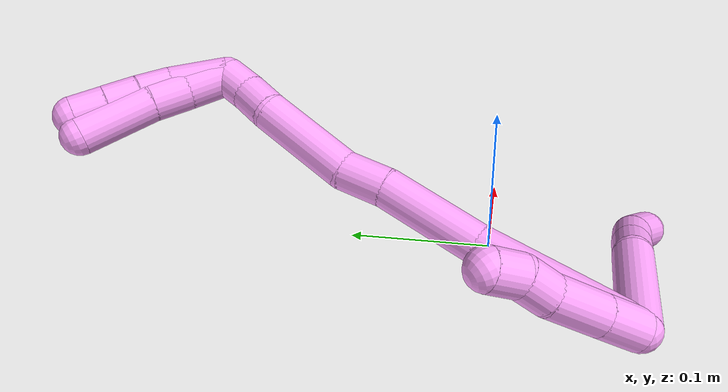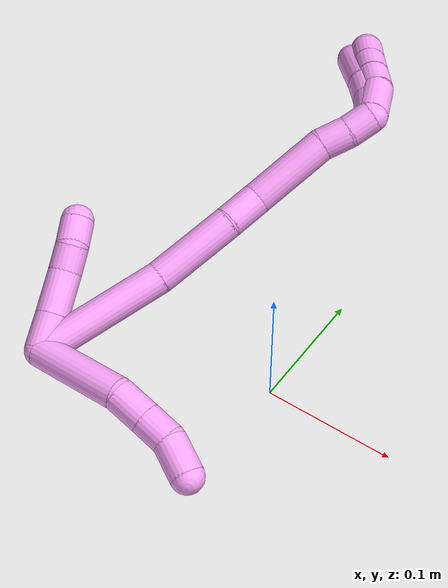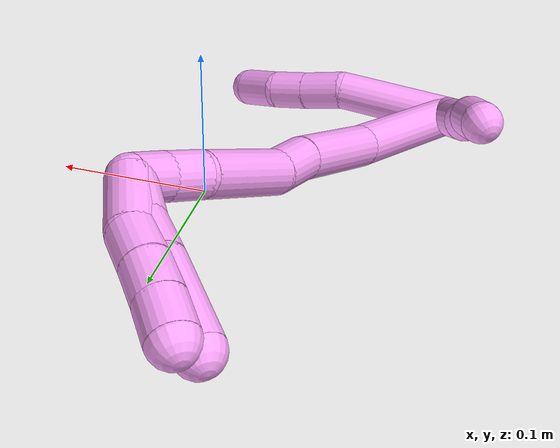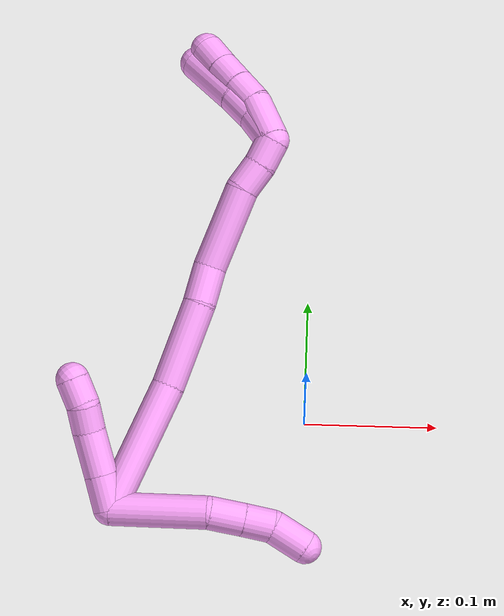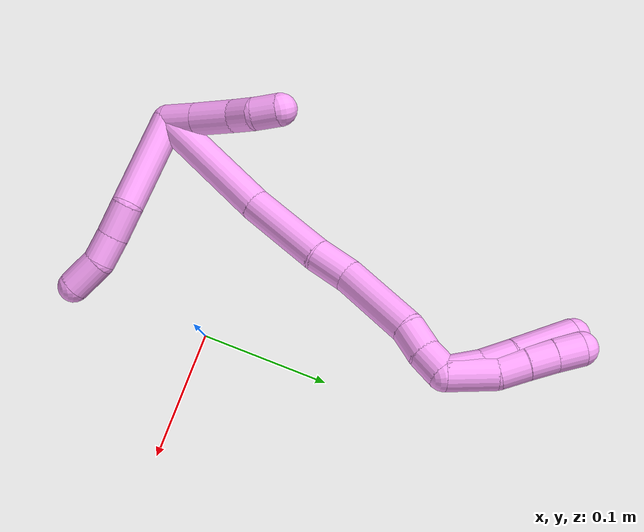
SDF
<sdf version="1.7">
 <world name="default">
  <model name="4">
   <static>0</static>
   <link name="4">
    <collision name="collision-cylinder-e_1_2_8">
     <pose>0.027608 -0.004525 0.023167 0.192904 0.863407 0.089086</pose>
     <geometry><cylinder><radius>0.0125</radius><length>0.072647</length></cylinder></geometry>
     <surface>
      <friction><ode><mu>1.16</mu><mu2>1.16</mu2><slip1>0</slip1><slip2>0</slip2></ode></friction>
      <contact><ode><kp>1e+06</kp><kd>1</kd><max_vel>0</max_vel><min_depth>0.001</min_depth></ode></contact>
     </surface>
    </collision>
    <visual name="visual-cylinder-e_1_2_8">
     <pose>0.027608 -0.004525 0.023167 0.192904 0.863407 0.089086</pose>
     <geometry><cylinder><radius>0.0125</radius><length>0.072647</length></cylinder></geometry>
     <material><ambient>1 0.65098 0.996078 1</ambient></material>
    </visual>
    <collision name="collision-cylinder-e_2_8_9">
     <pose>0.064406 -0.014705 0.053964 0.637734 0.768968 0.265585</pose>
     <geometry><cylinder><radius>0.0125</radius><length>0.02643</length></cylinder></geometry>
     <surface>
      <friction><ode><mu>1.16</mu><mu2>1.16</mu2><slip1>0</slip1><slip2>0</slip2></ode></friction>
      <contact><ode><kp>1e+06</kp><kd>1</kd><max_vel>0</max_vel><min_depth>0.001</min_depth></ode></contact>
     </surface>
    </collision>
    <visual name="visual-cylinder-e_2_8_9">
     <pose>0.064406 -0.014705 0.053964 0.637734 0.768968 0.265585</pose>
     <geometry><cylinder><radius>0.0125</radius><length>0.02643</length></cylinder></geometry>
     <material><ambient>1 0.65098 0.996078 1</ambient></material>
    </visual>
    <collision name="collision-cylinder-e_3_9_10">
     <pose>0.081262 -0.024867 0.068547 0.575227 0.746568 0.230681</pose>
     <geometry><cylinder><radius>0.0125</radius><length>0.022578</length></cylinder></geometry>
     <surface>
      <friction><ode><mu>1.16</mu><mu2>1.16</mu2><slip1>0</slip1><slip2>0</slip2></ode></friction>
      <contact><ode><kp>1e+06</kp><kd>1</kd><max_vel>0</max_vel><min_depth>0.001</min_depth></ode></contact>
     </surface>
    </collision>
    <visual name="visual-cylinder-e_3_9_10">
     <pose>0.081262 -0.024867 0.068547 0.575227 0.746568 0.230681</pose>
     <geometry><cylinder><radius>0.0125</radius><length>0.022578</length></cylinder></geometry>
     <material><ambient>1 0.65098 0.996078 1</ambient></material>
    </visual>
    <collision name="collision-cylinder-e_4_10_6">
     <pose>0.094488 -0.03708 0.086016 0.632331 0.403146 0.133502</pose>
     <geometry><cylinder><radius>0.0125</radius><length>0.028346</length></cylinder></geometry>
     <surface>
      <friction><ode><mu>1.16</mu><mu2>1.16</mu2><slip1>0</slip1><slip2>0</slip2></ode></friction>
      <contact><ode><kp>1e+06</kp><kd>1</kd><max_vel>0</max_vel><min_depth>0.001</min_depth></ode></contact>
     </surface>
    </collision>
    <visual name="visual-cylinder-e_4_10_6">
     <pose>0.094488 -0.03708 0.086016 0.632331 0.403146 0.133502</pose>
     <geometry><cylinder><radius>0.0125</radius><length>0.028346</length></cylinder></geometry>
     <material><ambient>1 0.65098 0.996078 1</ambient></material>
    </visual>
    <collision name="collision-cylinder-e_1_2_11">
     <pose>0.004183 0.008668 -0.008824 -2.36516 0.326114 -0.764924</pose>
     <geometry><cylinder><radius>0.0125</radius><length>0.026115</length></cylinder></geometry>
     <surface>
      <friction><ode><mu>1.16</mu><mu2>1.16</mu2><slip1>0</slip1><slip2>0</slip2></ode></friction>
      <contact><ode><kp>1e+06</kp><kd>1</kd><max_vel>0</max_vel><min_depth>0.001</min_depth></ode></contact>
     </surface>
    </collision>
    <visual name="visual-cylinder-e_1_2_11">
     <pose>0.004183 0.008668 -0.008824 -2.36516 0.326114 -0.764924</pose>
     <geometry><cylinder><radius>0.0125</radius><length>0.026115</length></cylinder></geometry>
     <material><ambient>1 0.65098 0.996078 1</ambient></material>
    </visual>
    <collision name="collision-cylinder-e_2_11_12">
     <pose>0.013512 0.028658 -0.028974 -2.35627 0.310888 -0.72344</pose>
     <geometry><cylinder><radius>0.0125</radius><length>0.033642</length></cylinder></geometry>
     <surface>
      <friction><ode><mu>1.16</mu><mu2>1.16</mu2><slip1>0</slip1><slip2>0</slip2></ode></friction>
      <contact><ode><kp>1e+06</kp><kd>1</kd><max_vel>0</max_vel><min_depth>0.001</min_depth></ode></contact>
     </surface>
    </collision>
    <visual name="visual-cylinder-e_2_11_12">
     <pose>0.013512 0.028658 -0.028974 -2.35627 0.310888 -0.72344</pose>
     <geometry><cylinder><radius>0.0125</radius><length>0.033642</length></cylinder></geometry>
     <material><ambient>1 0.65098 0.996078 1</ambient></material>
    </visual>
    <collision name="collision-cylinder-e_3_12_13">
     <pose>0.02175 0.047885 -0.045606 -2.16216 0.314113 -0.577583</pose>
     <geometry><cylinder><radius>0.0125</radius><length>0.020019</length></cylinder></geometry>
     <surface>
      <friction><ode><mu>1.16</mu><mu2>1.16</mu2><slip1>0</slip1><slip2>0</slip2></ode></friction>
      <contact><ode><kp>1e+06</kp><kd>1</kd><max_vel>0</max_vel><min_depth>0.001</min_depth></ode></contact>
     </surface>
    </collision>
    <visual name="visual-cylinder-e_3_12_13">
     <pose>0.02175 0.047885 -0.045606 -2.16216 0.314113 -0.577583</pose>
     <geometry><cylinder><radius>0.0125</radius><length>0.020019</length></cylinder></geometry>
     <material><ambient>1 0.65098 0.996078 1</ambient></material>
    </visual>
    <collision name="collision-cylinder-e_4_13_5">
     <pose>0.026977 0.061761 -0.058788 -2.49265 0.2127 -0.614646</pose>
     <geometry><cylinder><radius>0.0125</radius><length>0.020224</length></cylinder></geometry>
     <surface>
      <friction><ode><mu>1.16</mu><mu2>1.16</mu2><slip1>0</slip1><slip2>0</slip2></ode></friction>
      <contact><ode><kp>1e+06</kp><kd>1</kd><max_vel>0</max_vel><min_depth>0.001</min_depth></ode></contact>
     </surface>
    </collision>
    <visual name="visual-cylinder-e_4_13_5">
     <pose>0.026977 0.061761 -0.058788 -2.49265 0.2127 -0.614646</pose>
     <geometry><cylinder><radius>0.0125</radius><length>0.020224</length></cylinder></geometry>
     <material><ambient>1 0.65098 0.996078 1</ambient></material>
    </visual>
    <collision name="collision-cylinder-e_1_2_14">
     <pose>0.04345 0.01613 -0.01918 -2.44235 1.04763 -2.01551</pose>
     <geometry><cylinder><radius>0.0125</radius><length>0.100318</length></cylinder></geometry>
     <surface>
      <friction><ode><mu>1.16</mu><mu2>1.16</mu2><slip1>0</slip1><slip2>0</slip2></ode></friction>
      <contact><ode><kp>1e+06</kp><kd>1</kd><max_vel>0</max_vel><min_depth>0.001</min_depth></ode></contact>
     </surface>
    </collision>
    <visual name="visual-cylinder-e_1_2_14">
     <pose>0.04345 0.01613 -0.01918 -2.44235 1.04763 -2.01551</pose>
     <geometry><cylinder><radius>0.0125</radius><length>0.100318</length></cylinder></geometry>
     <material><ambient>1 0.65098 0.996078 1</ambient></material>
    </visual>
    <collision name="collision-cylinder-e_2_14_15">
     <pose>0.113315 0.046807 -0.050828 -2.27941 0.943297 -1.674</pose>
     <geometry><cylinder><radius>0.0125</radius><length>0.065264</length></cylinder></geometry>
     <surface>
      <friction><ode><mu>1.16</mu><mu2>1.16</mu2><slip1>0</slip1><slip2>0</slip2></ode></friction>
      <contact><ode><kp>1e+06</kp><kd>1</kd><max_vel>0</max_vel><min_depth>0.001</min_depth></ode></contact>
     </surface>
    </collision>
    <visual name="visual-cylinder-e_2_14_15">
     <pose>0.113315 0.046807 -0.050828 -2.27941 0.943297 -1.674</pose>
     <geometry><cylinder><radius>0.0125</radius><length>0.065264</length></cylinder></geometry>
     <material><ambient>1 0.65098 0.996078 1</ambient></material>
    </visual>
    <collision name="collision-cylinder-e_3_15_16">
     <pose>0.15088 0.066636 -0.070604 -2.51571 0.890761 -1.95021</pose>
     <geometry><cylinder><radius>0.0125</radius><length>0.028679</length></cylinder></geometry>
     <surface>
      <friction><ode><mu>1.16</mu><mu2>1.16</mu2><slip1>0</slip1><slip2>0</slip2></ode></friction>
      <contact><ode><kp>1e+06</kp><kd>1</kd><max_vel>0</max_vel><min_depth>0.001</min_depth></ode></contact>
     </surface>
    </collision>
    <visual name="visual-cylinder-e_3_15_16">
     <pose>0.15088 0.066636 -0.070604 -2.51571 0.890761 -1.95021</pose>
     <geometry><cylinder><radius>0.0125</radius><length>0.028679</length></cylinder></geometry>
     <material><ambient>1 0.65098 0.996078 1</ambient></material>
    </visual>
    <collision name="collision-cylinder-e_4_16_17">
     <pose>0.187232 0.088092 -0.08729 -2.09628 0.932538 -1.43608</pose>
     <geometry><cylinder><radius>0.0125</radius><length>0.062761</length></cylinder></geometry>
     <surface>
      <friction><ode><mu>1.16</mu><mu2>1.16</mu2><slip1>0</slip1><slip2>0</slip2></ode></friction>
      <contact><ode><kp>1e+06</kp><kd>1</kd><max_vel>0</max_vel><min_depth>0.001</min_depth></ode></contact>
     </surface>
    </collision>
    <visual name="visual-cylinder-e_4_16_17">
     <pose>0.187232 0.088092 -0.08729 -2.09628 0.932538 -1.43608</pose>
     <geometry><cylinder><radius>0.0125</radius><length>0.062761</length></cylinder></geometry>
     <material><ambient>1 0.65098 0.996078 1</ambient></material>
    </visual>
    <collision name="collision-cylinder-e_5_17_18">
     <pose>0.222742 0.108098 -0.098331 -1.97997 1.18572 -1.59693</pose>
     <geometry><cylinder><radius>0.0125</radius><length>0.022243</length></cylinder></geometry>
     <surface>
      <friction><ode><mu>1.16</mu><mu2>1.16</mu2><slip1>0</slip1><slip2>0</slip2></ode></friction>
      <contact><ode><kp>1e+06</kp><kd>1</kd><max_vel>0</max_vel><min_depth>0.001</min_depth></ode></contact>
     </surface>
    </collision>
    <visual name="visual-cylinder-e_5_17_18">
     <pose>0.222742 0.108098 -0.098331 -1.97997 1.18572 -1.59693</pose>
     <geometry><cylinder><radius>0.0125</radius><length>0.022243</length></cylinder></geometry>
     <material><ambient>1 0.65098 0.996078 1</ambient></material>
    </visual>
    <collision name="collision-cylinder-e_6_18_1">
     <pose>0.241963 0.116461 -0.102732 -2.11475 1.03489 -1.58017</pose>
     <geometry><cylinder><radius>0.0125</radius><length>0.020736</length></cylinder></geometry>
     <surface>
      <friction><ode><mu>1.16</mu><mu2>1.16</mu2><slip1>0</slip1><slip2>0</slip2></ode></friction>
      <contact><ode><kp>1e+06</kp><kd>1</kd><max_vel>0</max_vel><min_depth>0.001</min_depth></ode></contact>
     </surface>
    </collision>
    <visual name="visual-cylinder-e_6_18_1">
     <pose>0.241963 0.116461 -0.102732 -2.11475 1.03489 -1.58017</pose>
     <geometry><cylinder><radius>0.0125</radius><length>0.020736</length></cylinder></geometry>
     <material><ambient>1 0.65098 0.996078 1</ambient></material>
    </visual>
    <collision name="collision-cylinder-e_1_1_19">
     <pose>0.255543 0.123907 -0.122838 -2.97522 0.258997 -2.00259</pose>
     <geometry><cylinder><radius>0.0125</radius><length>0.036432</length></cylinder></geometry>
     <surface>
      <friction><ode><mu>1.16</mu><mu2>1.16</mu2><slip1>0</slip1><slip2>0</slip2></ode></friction>
      <contact><ode><kp>1e+06</kp><kd>1</kd><max_vel>0</max_vel><min_depth>0.001</min_depth></ode></contact>
     </surface>
    </collision>
    <visual name="visual-cylinder-e_1_1_19">
     <pose>0.255543 0.123907 -0.122838 -2.97522 0.258997 -2.00259</pose>
     <geometry><cylinder><radius>0.0125</radius><length>0.036432</length></cylinder></geometry>
     <material><ambient>1 0.65098 0.996078 1</ambient></material>
    </visual>
    <collision name="collision-cylinder-e_2_19_20">
     <pose>0.260072 0.128716 -0.150755 -2.96415 -0.012684 0.142355</pose>
     <geometry><cylinder><radius>0.0125</radius><length>0.021442</length></cylinder></geometry>
     <surface>
      <friction><ode><mu>1.16</mu><mu2>1.16</mu2><slip1>0</slip1><slip2>0</slip2></ode></friction>
      <contact><ode><kp>1e+06</kp><kd>1</kd><max_vel>0</max_vel><min_depth>0.001</min_depth></ode></contact>
     </surface>
    </collision>
    <visual name="visual-cylinder-e_2_19_20">
     <pose>0.260072 0.128716 -0.150755 -2.96415 -0.012684 0.142355</pose>
     <geometry><cylinder><radius>0.0125</radius><length>0.021442</length></cylinder></geometry>
     <material><ambient>1 0.65098 0.996078 1</ambient></material>
    </visual>
    <collision name="collision-cylinder-e_3_20_21">
     <pose>0.260007 0.131876 -0.171737 -3.02059 0.006681 -0.110187</pose>
     <geometry><cylinder><radius>0.0125</radius><length>0.021014</length></cylinder></geometry>
     <surface>
      <friction><ode><mu>1.16</mu><mu2>1.16</mu2><slip1>0</slip1><slip2>0</slip2></ode></friction>
      <contact><ode><kp>1e+06</kp><kd>1</kd><max_vel>0</max_vel><min_depth>0.001</min_depth></ode></contact>
     </surface>
    </collision>
    <visual name="visual-cylinder-e_3_20_21">
     <pose>0.260007 0.131876 -0.171737 -3.02059 0.006681 -0.110187</pose>
     <geometry><cylinder><radius>0.0125</radius><length>0.021014</length></cylinder></geometry>
     <material><ambient>1 0.65098 0.996078 1</ambient></material>
    </visual>
    <collision name="collision-cylinder-e_4_21_4">
     <pose>0.260506 0.134259 -0.192655 -3.03572 0.040685 -0.733239</pose>
     <geometry><cylinder><radius>0.0125</radius><length>0.021112</length></cylinder></geometry>
     <surface>
      <friction><ode><mu>1.16</mu><mu2>1.16</mu2><slip1>0</slip1><slip2>0</slip2></ode></friction>
      <contact><ode><kp>1e+06</kp><kd>1</kd><max_vel>0</max_vel><min_depth>0.001</min_depth></ode></contact>
     </surface>
    </collision>
    <visual name="visual-cylinder-e_4_21_4">
     <pose>0.260506 0.134259 -0.192655 -3.03572 0.040685 -0.733239</pose>
     <geometry><cylinder><radius>0.0125</radius><length>0.021112</length></cylinder></geometry>
     <material><ambient>1 0.65098 0.996078 1</ambient></material>
    </visual>
    <collision name="collision-cylinder-e_1_1_22">
     <pose>0.252204 0.121714 -0.119134 -3.08872 0.096615 -2.14058</pose>
     <geometry><cylinder><radius>0.0125</radius><length>0.02749</length></cylinder></geometry>
     <surface>
      <friction><ode><mu>1.16</mu><mu2>1.16</mu2><slip1>0</slip1><slip2>0</slip2></ode></friction>
      <contact><ode><kp>1e+06</kp><kd>1</kd><max_vel>0</max_vel><min_depth>0.001</min_depth></ode></contact>
     </surface>
    </collision>
    <visual name="visual-cylinder-e_1_1_22">
     <pose>0.252204 0.121714 -0.119134 -3.08872 0.096615 -2.14058</pose>
     <geometry><cylinder><radius>0.0125</radius><length>0.02749</length></cylinder></geometry>
     <material><ambient>1 0.65098 0.996078 1</ambient></material>
    </visual>
    <collision name="collision-cylinder-e_2_22_23">
     <pose>0.253085 0.124033 -0.145084 -3.01249 -0.035885 0.541557</pose>
     <geometry><cylinder><radius>0.0125</radius><length>0.024799</length></cylinder></geometry>
     <surface>
      <friction><ode><mu>1.16</mu><mu2>1.16</mu2><slip1>0</slip1><slip2>0</slip2></ode></friction>
      <contact><ode><kp>1e+06</kp><kd>1</kd><max_vel>0</max_vel><min_depth>0.001</min_depth></ode></contact>
     </surface>
    </collision>
    <visual name="visual-cylinder-e_2_22_23">
     <pose>0.253085 0.124033 -0.145084 -3.01249 -0.035885 0.541557</pose>
     <geometry><cylinder><radius>0.0125</radius><length>0.024799</length></cylinder></geometry>
     <material><ambient>1 0.65098 0.996078 1</ambient></material>
    </visual>
    <collision name="collision-cylinder-e_3_23_3">
     <pose>0.251381 0.126006 -0.181192 -3.12572 -0.05279 2.55757</pose>
     <geometry><cylinder><radius>0.0125</radius><length>0.047711</length></cylinder></geometry>
     <surface>
      <friction><ode><mu>1.16</mu><mu2>1.16</mu2><slip1>0</slip1><slip2>0</slip2></ode></friction>
      <contact><ode><kp>1e+06</kp><kd>1</kd><max_vel>0</max_vel><min_depth>0.001</min_depth></ode></contact>
     </surface>
    </collision>
    <visual name="visual-cylinder-e_3_23_3">
     <pose>0.251381 0.126006 -0.181192 -3.12572 -0.05279 2.55757</pose>
     <geometry><cylinder><radius>0.0125</radius><length>0.047711</length></cylinder></geometry>
     <material><ambient>1 0.65098 0.996078 1</ambient></material>
    </visual>
    <collision name="collision-sphere-3">
     <pose>0.250122 0.126384 -0.205011 0 -0 0</pose>
     <geometry><sphere><radius>0.0125</radius></sphere></geometry>
     <surface>
      <friction><ode><mu>1.16</mu><mu2>1.16</mu2><slip1>0</slip1><slip2>0</slip2></ode></friction>
      <contact><ode><kp>1e+06</kp><kd>1</kd><max_vel>0</max_vel><min_depth>0.001</min_depth></ode></contact>
     </surface>
    </collision>
    <visual name="visual-sphere-3">
     <pose>0.250122 0.126384 -0.205011 0 -0 0</pose>
     <geometry><sphere><radius>0.0125</radius></sphere></geometry>
     <material><ambient>1 0.65098 0.996078 1</ambient></material>
    </visual>
    <collision name="collision-sphere-23">
     <pose>0.25264 0.125628 -0.157373 0 -0 0</pose>
     <geometry><sphere><radius>0.0125</radius></sphere></geometry>
     <surface>
      <friction><ode><mu>1.16</mu><mu2>1.16</mu2><slip1>0</slip1><slip2>0</slip2></ode></friction>
      <contact><ode><kp>1e+06</kp><kd>1</kd><max_vel>0</max_vel><min_depth>0.001</min_depth></ode></contact>
     </surface>
    </collision>
    <visual name="visual-sphere-23">
     <pose>0.25264 0.125628 -0.157373 0 -0 0</pose>
     <geometry><sphere><radius>0.0125</radius></sphere></geometry>
     <material><ambient>1 0.65098 0.996078 1</ambient></material>
    </visual>
    <collision name="collision-sphere-22">
     <pose>0.25353 0.122437 -0.132796 0 -0 0</pose>
     <geometry><sphere><radius>0.0125</radius></sphere></geometry>
     <surface>
      <friction><ode><mu>1.16</mu><mu2>1.16</mu2><slip1>0</slip1><slip2>0</slip2></ode></friction>
      <contact><ode><kp>1e+06</kp><kd>1</kd><max_vel>0</max_vel><min_depth>0.001</min_depth></ode></contact>
     </surface>
    </collision>
    <visual name="visual-sphere-22">
     <pose>0.25353 0.122437 -0.132796 0 -0 0</pose>
     <geometry><sphere><radius>0.0125</radius></sphere></geometry>
     <material><ambient>1 0.65098 0.996078 1</ambient></material>
    </visual>
    <collision name="collision-sphere-4">
     <pose>0.260936 0.135374 -0.203143 0 -0 0</pose>
     <geometry><sphere><radius>0.0125</radius></sphere></geometry>
     <surface>
      <friction><ode><mu>1.16</mu><mu2>1.16</mu2><slip1>0</slip1><slip2>0</slip2></ode></friction>
      <contact><ode><kp>1e+06</kp><kd>1</kd><max_vel>0</max_vel><min_depth>0.001</min_depth></ode></contact>
     </surface>
    </collision>
    <visual name="visual-sphere-4">
     <pose>0.260936 0.135374 -0.203143 0 -0 0</pose>
     <geometry><sphere><radius>0.0125</radius></sphere></geometry>
     <material><ambient>1 0.65098 0.996078 1</ambient></material>
    </visual>
    <collision name="collision-sphere-21">
     <pose>0.260077 0.133144 -0.182166 0 -0 0</pose>
     <geometry><sphere><radius>0.0125</radius></sphere></geometry>
     <surface>
      <friction><ode><mu>1.16</mu><mu2>1.16</mu2><slip1>0</slip1><slip2>0</slip2></ode></friction>
      <contact><ode><kp>1e+06</kp><kd>1</kd><max_vel>0</max_vel><min_depth>0.001</min_depth></ode></contact>
     </surface>
    </collision>
    <visual name="visual-sphere-21">
     <pose>0.260077 0.133144 -0.182166 0 -0 0</pose>
     <geometry><sphere><radius>0.0125</radius></sphere></geometry>
     <material><ambient>1 0.65098 0.996078 1</ambient></material>
    </visual>
    <collision name="collision-sphere-20">
     <pose>0.259936 0.130608 -0.161307 0 -0 0</pose>
     <geometry><sphere><radius>0.0125</radius></sphere></geometry>
     <surface>
      <friction><ode><mu>1.16</mu><mu2>1.16</mu2><slip1>0</slip1><slip2>0</slip2></ode></friction>
      <contact><ode><kp>1e+06</kp><kd>1</kd><max_vel>0</max_vel><min_depth>0.001</min_depth></ode></contact>
     </surface>
    </collision>
    <visual name="visual-sphere-20">
     <pose>0.259936 0.130608 -0.161307 0 -0 0</pose>
     <geometry><sphere><radius>0.0125</radius></sphere></geometry>
     <material><ambient>1 0.65098 0.996078 1</ambient></material>
    </visual>
    <collision name="collision-sphere-11">
     <pose>0.008366 0.017335 -0.017649 0 -0 0</pose>
     <geometry><sphere><radius>0.0125</radius></sphere></geometry>
     <surface>
      <friction><ode><mu>1.16</mu><mu2>1.16</mu2><slip1>0</slip1><slip2>0</slip2></ode></friction>
      <contact><ode><kp>1e+06</kp><kd>1</kd><max_vel>0</max_vel><min_depth>0.001</min_depth></ode></contact>
     </surface>
    </collision>
    <visual name="visual-sphere-11">
     <pose>0.008366 0.017335 -0.017649 0 -0 0</pose>
     <geometry><sphere><radius>0.0125</radius></sphere></geometry>
     <material><ambient>1 0.65098 0.996078 1</ambient></material>
    </visual>
    <collision name="collision-sphere-6">
     <pose>0.100049 -0.044785 0.096532 0 -0 0</pose>
     <geometry><sphere><radius>0.0125</radius></sphere></geometry>
     <surface>
      <friction><ode><mu>1.16</mu><mu2>1.16</mu2><slip1>0</slip1><slip2>0</slip2></ode></friction>
      <contact><ode><kp>1e+06</kp><kd>1</kd><max_vel>0</max_vel><min_depth>0.001</min_depth></ode></contact>
     </surface>
    </collision>
    <visual name="visual-sphere-6">
     <pose>0.100049 -0.044785 0.096532 0 -0 0</pose>
     <geometry><sphere><radius>0.0125</radius></sphere></geometry>
     <material><ambient>1 0.65098 0.996078 1</ambient></material>
    </visual>
    <collision name="collision-sphere-10">
     <pose>0.088928 -0.029375 0.0755 0 -0 0</pose>
     <geometry><sphere><radius>0.0125</radius></sphere></geometry>
     <surface>
      <friction><ode><mu>1.16</mu><mu2>1.16</mu2><slip1>0</slip1><slip2>0</slip2></ode></friction>
      <contact><ode><kp>1e+06</kp><kd>1</kd><max_vel>0</max_vel><min_depth>0.001</min_depth></ode></contact>
     </surface>
    </collision>
    <visual name="visual-sphere-10">
     <pose>0.088928 -0.029375 0.0755 0 -0 0</pose>
     <geometry><sphere><radius>0.0125</radius></sphere></geometry>
     <material><ambient>1 0.65098 0.996078 1</ambient></material>
    </visual>
    <collision name="collision-sphere-9">
     <pose>0.073595 -0.020359 0.061594 0 -0 0</pose>
     <geometry><sphere><radius>0.0125</radius></sphere></geometry>
     <surface>
      <friction><ode><mu>1.16</mu><mu2>1.16</mu2><slip1>0</slip1><slip2>0</slip2></ode></friction>
      <contact><ode><kp>1e+06</kp><kd>1</kd><max_vel>0</max_vel><min_depth>0.001</min_depth></ode></contact>
     </surface>
    </collision>
    <visual name="visual-sphere-9">
     <pose>0.073595 -0.020359 0.061594 0 -0 0</pose>
     <geometry><sphere><radius>0.0125</radius></sphere></geometry>
     <material><ambient>1 0.65098 0.996078 1</ambient></material>
    </visual>
    <collision name="collision-sphere-2">
     <geometry><sphere><radius>0.0125</radius></sphere></geometry>
     <surface>
      <friction><ode><mu>1.16</mu><mu2>1.16</mu2><slip1>0</slip1><slip2>0</slip2></ode></friction>
      <contact><ode><kp>1e+06</kp><kd>1</kd><max_vel>0</max_vel><min_depth>0.001</min_depth></ode></contact>
     </surface>
    </collision>
    <visual name="visual-sphere-2">
     <geometry><sphere><radius>0.0125</radius></sphere></geometry>
     <material><ambient>1 0.65098 0.996078 1</ambient></material>
    </visual>
    <collision name="collision-sphere-19">
     <pose>0.260208 0.126823 -0.140203 0 -0 0</pose>
     <geometry><sphere><radius>0.0125</radius></sphere></geometry>
     <surface>
      <friction><ode><mu>1.16</mu><mu2>1.16</mu2><slip1>0</slip1><slip2>0</slip2></ode></friction>
      <contact><ode><kp>1e+06</kp><kd>1</kd><max_vel>0</max_vel><min_depth>0.001</min_depth></ode></contact>
     </surface>
    </collision>
    <visual name="visual-sphere-19">
     <pose>0.260208 0.126823 -0.140203 0 -0 0</pose>
     <geometry><sphere><radius>0.0125</radius></sphere></geometry>
     <material><ambient>1 0.65098 0.996078 1</ambient></material>
    </visual>
    <collision name="collision-sphere-8">
     <pose>0.055216 -0.009051 0.046334 0 -0 0</pose>
     <geometry><sphere><radius>0.0125</radius></sphere></geometry>
     <surface>
      <friction><ode><mu>1.16</mu><mu2>1.16</mu2><slip1>0</slip1><slip2>0</slip2></ode></friction>
      <contact><ode><kp>1e+06</kp><kd>1</kd><max_vel>0</max_vel><min_depth>0.001</min_depth></ode></contact>
     </surface>
    </collision>
    <visual name="visual-sphere-8">
     <pose>0.055216 -0.009051 0.046334 0 -0 0</pose>
     <geometry><sphere><radius>0.0125</radius></sphere></geometry>
     <material><ambient>1 0.65098 0.996078 1</ambient></material>
    </visual>
    <collision name="collision-sphere-12">
     <pose>0.018657 0.039982 -0.040299 0 -0 0</pose>
     <geometry><sphere><radius>0.0125</radius></sphere></geometry>
     <surface>
      <friction><ode><mu>1.16</mu><mu2>1.16</mu2><slip1>0</slip1><slip2>0</slip2></ode></friction>
      <contact><ode><kp>1e+06</kp><kd>1</kd><max_vel>0</max_vel><min_depth>0.001</min_depth></ode></contact>
     </surface>
    </collision>
    <visual name="visual-sphere-12">
     <pose>0.018657 0.039982 -0.040299 0 -0 0</pose>
     <geometry><sphere><radius>0.0125</radius></sphere></geometry>
     <material><ambient>1 0.65098 0.996078 1</ambient></material>
    </visual>
    <collision name="collision-sphere-13">
     <pose>0.024843 0.055788 -0.050913 0 -0 0</pose>
     <geometry><sphere><radius>0.0125</radius></sphere></geometry>
     <surface>
      <friction><ode><mu>1.16</mu><mu2>1.16</mu2><slip1>0</slip1><slip2>0</slip2></ode></friction>
      <contact><ode><kp>1e+06</kp><kd>1</kd><max_vel>0</max_vel><min_depth>0.001</min_depth></ode></contact>
     </surface>
    </collision>
    <visual name="visual-sphere-13">
     <pose>0.024843 0.055788 -0.050913 0 -0 0</pose>
     <geometry><sphere><radius>0.0125</radius></sphere></geometry>
     <material><ambient>1 0.65098 0.996078 1</ambient></material>
    </visual>
    <collision name="collision-sphere-5">
     <pose>0.029112 0.067735 -0.066663 0 -0 0</pose>
     <geometry><sphere><radius>0.0125</radius></sphere></geometry>
     <surface>
      <friction><ode><mu>1.16</mu><mu2>1.16</mu2><slip1>0</slip1><slip2>0</slip2></ode></friction>
      <contact><ode><kp>1e+06</kp><kd>1</kd><max_vel>0</max_vel><min_depth>0.001</min_depth></ode></contact>
     </surface>
    </collision>
    <visual name="visual-sphere-5">
     <pose>0.029112 0.067735 -0.066663 0 -0 0</pose>
     <geometry><sphere><radius>0.0125</radius></sphere></geometry>
     <material><ambient>1 0.65098 0.996078 1</ambient></material>
    </visual>
    <collision name="collision-sphere-14">
     <pose>0.086899 0.03226 -0.038359 0 -0 0</pose>
     <geometry><sphere><radius>0.0125</radius></sphere></geometry>
     <surface>
      <friction><ode><mu>1.16</mu><mu2>1.16</mu2><slip1>0</slip1><slip2>0</slip2></ode></friction>
      <contact><ode><kp>1e+06</kp><kd>1</kd><max_vel>0</max_vel><min_depth>0.001</min_depth></ode></contact>
     </surface>
    </collision>
    <visual name="visual-sphere-14">
     <pose>0.086899 0.03226 -0.038359 0 -0 0</pose>
     <geometry><sphere><radius>0.0125</radius></sphere></geometry>
     <material><ambient>1 0.65098 0.996078 1</ambient></material>
    </visual>
    <collision name="collision-sphere-15">
     <pose>0.13973 0.061354 -0.063296 0 -0 0</pose>
     <geometry><sphere><radius>0.0125</radius></sphere></geometry>
     <surface>
      <friction><ode><mu>1.16</mu><mu2>1.16</mu2><slip1>0</slip1><slip2>0</slip2></ode></friction>
      <contact><ode><kp>1e+06</kp><kd>1</kd><max_vel>0</max_vel><min_depth>0.001</min_depth></ode></contact>
     </surface>
    </collision>
    <visual name="visual-sphere-15">
     <pose>0.13973 0.061354 -0.063296 0 -0 0</pose>
     <geometry><sphere><radius>0.0125</radius></sphere></geometry>
     <material><ambient>1 0.65098 0.996078 1</ambient></material>
    </visual>
    <collision name="collision-sphere-16">
     <pose>0.162029 0.071918 -0.077911 0 -0 0</pose>
     <geometry><sphere><radius>0.0125</radius></sphere></geometry>
     <surface>
      <friction><ode><mu>1.16</mu><mu2>1.16</mu2><slip1>0</slip1><slip2>0</slip2></ode></friction>
      <contact><ode><kp>1e+06</kp><kd>1</kd><max_vel>0</max_vel><min_depth>0.001</min_depth></ode></contact>
     </surface>
    </collision>
    <visual name="visual-sphere-16">
     <pose>0.162029 0.071918 -0.077911 0 -0 0</pose>
     <geometry><sphere><radius>0.0125</radius></sphere></geometry>
     <material><ambient>1 0.65098 0.996078 1</ambient></material>
    </visual>
    <collision name="collision-sphere-17">
     <pose>0.212435 0.104266 -0.096668 0 -0 0</pose>
     <geometry><sphere><radius>0.0125</radius></sphere></geometry>
     <surface>
      <friction><ode><mu>1.16</mu><mu2>1.16</mu2><slip1>0</slip1><slip2>0</slip2></ode></friction>
      <contact><ode><kp>1e+06</kp><kd>1</kd><max_vel>0</max_vel><min_depth>0.001</min_depth></ode></contact>
     </surface>
    </collision>
    <visual name="visual-sphere-17">
     <pose>0.212435 0.104266 -0.096668 0 -0 0</pose>
     <geometry><sphere><radius>0.0125</radius></sphere></geometry>
     <material><ambient>1 0.65098 0.996078 1</ambient></material>
    </visual>
    <collision name="collision-sphere-18">
     <pose>0.233048 0.111931 -0.099993 0 -0 0</pose>
     <geometry><sphere><radius>0.0125</radius></sphere></geometry>
     <surface>
      <friction><ode><mu>1.16</mu><mu2>1.16</mu2><slip1>0</slip1><slip2>0</slip2></ode></friction>
      <contact><ode><kp>1e+06</kp><kd>1</kd><max_vel>0</max_vel><min_depth>0.001</min_depth></ode></contact>
     </surface>
    </collision>
    <visual name="visual-sphere-18">
     <pose>0.233048 0.111931 -0.099993 0 -0 0</pose>
     <geometry><sphere><radius>0.0125</radius></sphere></geometry>
     <material><ambient>1 0.65098 0.996078 1</ambient></material>
    </visual>
    <collision name="collision-sphere-1">
     <pose>0.250878 0.120991 -0.105472 0 -0 0</pose>
     <geometry><sphere><radius>0.0125</radius></sphere></geometry>
     <surface>
      <friction><ode><mu>1.16</mu><mu2>1.16</mu2><slip1>0</slip1><slip2>0</slip2></ode></friction>
      <contact><ode><kp>1e+06</kp><kd>1</kd><max_vel>0</max_vel><min_depth>0.001</min_depth></ode></contact>
     </surface>
    </collision>
    <visual name="visual-sphere-1">
     <pose>0.250878 0.120991 -0.105472 0 -0 0</pose>
     <geometry><sphere><radius>0.0125</radius></sphere></geometry>
     <material><ambient>1 0.65098 0.996078 1</ambient></material>
    </visual>
    <inertial>
     <pose>0.131497 0.057752 -0.058901 0 -0 0</pose>
     <mass>0.75</mass>
     <inertia>
      <ixx>-3.5e-05</ixx>
      <ixy>0</ixy>
      <ixz>0</ixz>
      <iyy>9.1e-05</iyy>
      <iyz>0</iyz>
      <izz>-0.000232</izz>
     </inertia>
    </inertial>
   </link>
   <pose>-0.141425 -0.085197 0.034716 1.28276 -0.024884 0.666892</pose>
  </model>
 </world>
</sdf>
